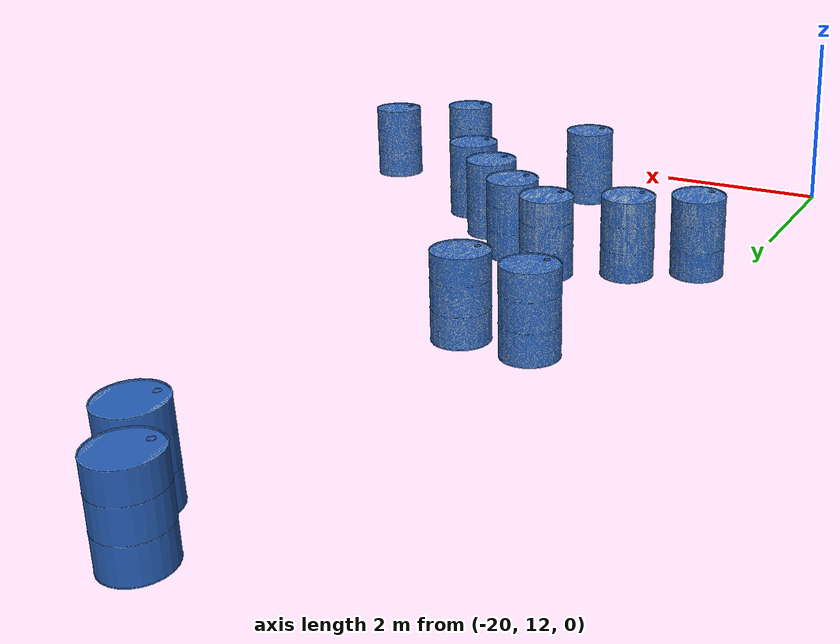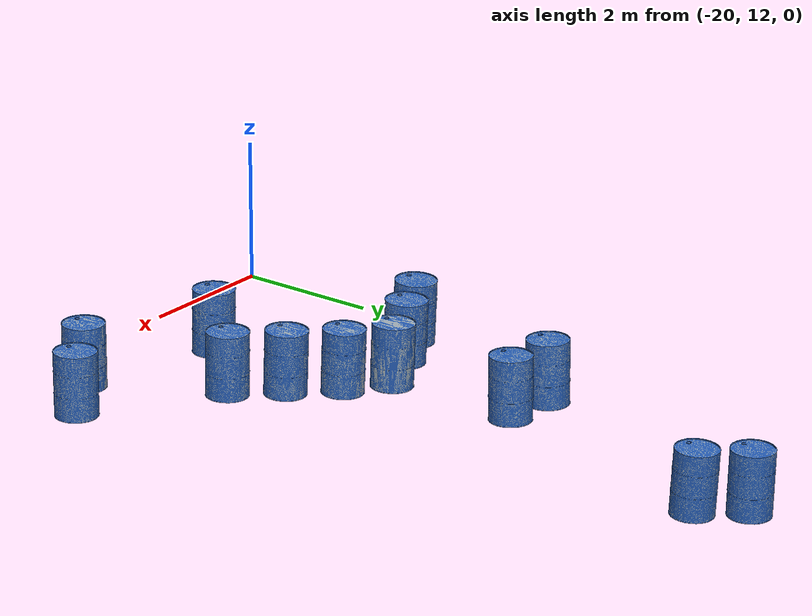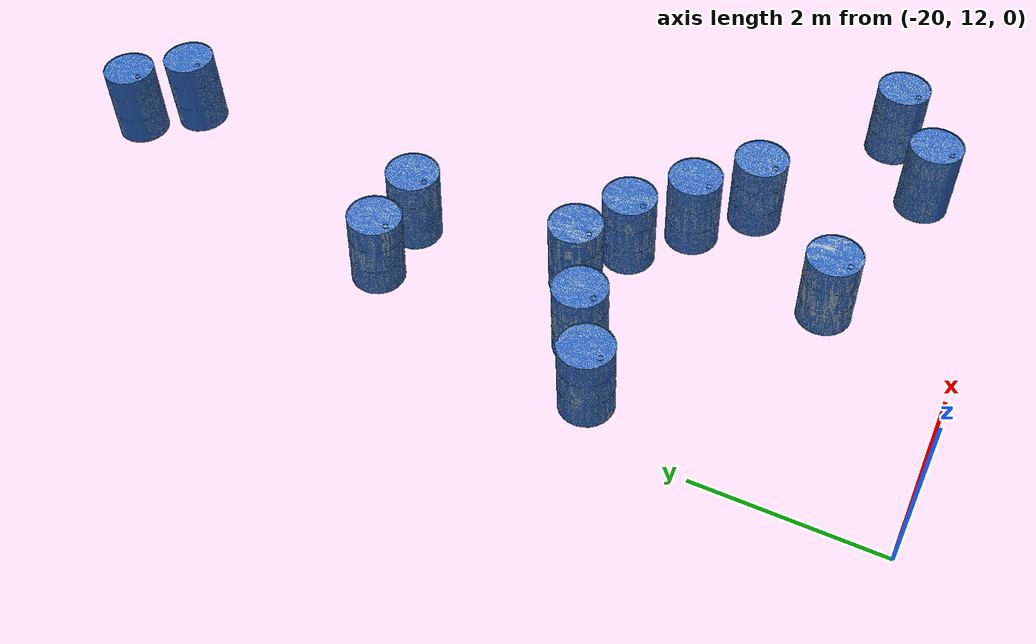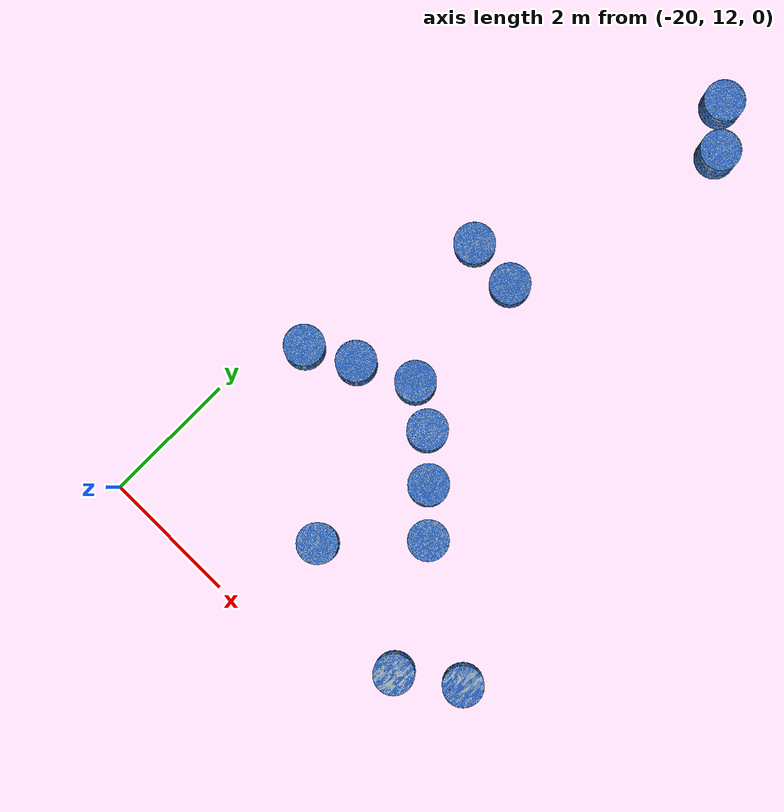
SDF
<sdf version="1.6">
 <world name="default">
  <model name="barrel_74">
   <link name="link">
    <inertial>
     <mass>500</mass>
     <inertia><ixx>51.2096</ixx><iyy>51.2096</iyy><izz>25</izz><ixy>0</ixy><ixz>0</ixz><iyz>0</iyz></inertia>
    </inertial>
    <collision name="collision">
     <geometry><mesh><uri>model://barrel/meshes/barrel.dae</uri><scale>1 1 1</scale></mesh></geometry>
    </collision>
    <visual name="visual">
     <geometry><mesh><uri>model://barrel/meshes/barrel.dae</uri><scale>1 1 1</scale></mesh></geometry>
    </visual>
   </link>
   <pose>-14.9016 13.2093 0.068327 -0.000639 -0.002185 -0.001315</pose>
  </model>
  <model name="barrel_75">
   <link name="link">
    <inertial>
     <mass>500</mass>
     <inertia><ixx>51.2096</ixx><iyy>51.2096</iyy><izz>25</izz><ixy>0</ixy><ixz>0</ixz><iyz>0</iyz></inertia>
    </inertial>
    <collision name="collision">
     <geometry><mesh><uri>model://barrel/meshes/barrel.dae</uri><scale>1 1 1</scale></mesh></geometry>
    </collision>
    <visual name="visual">
     <geometry><mesh><uri>model://barrel/meshes/barrel.dae</uri><scale>1 1 1</scale></mesh></geometry>
    </visual>
   </link>
   <pose>-15.6987 12.6435 0.0653 0.003623 -0.005555 -0</pose>
  </model>
  <model name="barrel_78">
   <link name="link">
    <inertial>
     <mass>500</mass>
     <inertia><ixx>51.2096</ixx><iyy>51.2096</iyy><izz>25</izz><ixy>0</ixy><ixz>0</ixz><iyz>0</iyz></inertia>
    </inertial>
    <collision name="collision">
     <geometry><mesh><uri>model://barrel/meshes/barrel.dae</uri><scale>1 1 1</scale></mesh></geometry>
    </collision>
    <visual name="visual">
     <geometry><mesh><uri>model://barrel/meshes/barrel.dae</uri><scale>1 1 1</scale></mesh></geometry>
    </visual>
   </link>
   <pose>-17.7373 13.1512 0.047634 -0.014364 -0.012023 0.000298</pose>
  </model>
  <model name="barrel_79">
   <link name="link">
    <inertial>
     <mass>500</mass>
     <inertia><ixx>51.2096</ixx><iyy>51.2096</iyy><izz>25</izz><ixy>0</ixy><ixz>0</ixz><iyz>0</iyz></inertia>
    </inertial>
    <collision name="collision">
     <geometry><mesh><uri>model://barrel/meshes/barrel.dae</uri><scale>1 1 1</scale></mesh></geometry>
    </collision>
    <visual name="visual">
     <geometry><mesh><uri>model://barrel/meshes/barrel.dae</uri><scale>1 1 1</scale></mesh></geometry>
    </visual>
   </link>
   <pose>-16.6747 14.2808 0.04419 -0.014365 -0.012025 0.00024</pose>
  </model>
  <model name="barrel_80">
   <link name="link">
    <inertial>
     <mass>500</mass>
     <inertia><ixx>51.2096</ixx><iyy>51.2096</iyy><izz>25</izz><ixy>0</ixy><ixz>0</ixz><iyz>0</iyz></inertia>
    </inertial>
    <collision name="collision">
     <geometry><mesh><uri>model://barrel/meshes/barrel.dae</uri><scale>1 1 1</scale></mesh></geometry>
    </collision>
    <visual name="visual">
     <geometry><mesh><uri>model://barrel/meshes/barrel.dae</uri><scale>1 1 1</scale></mesh></geometry>
    </visual>
   </link>
   <pose>-17.2208 14.8208 0.025108 -0.02812 -0.017312 -6e-05</pose>
  </model>
  <model name="barrel_81">
   <link name="link">
    <inertial>
     <mass>500</mass>
     <inertia><ixx>51.2096</ixx><iyy>51.2096</iyy><izz>25</izz><ixy>0</ixy><ixz>0</ixz><iyz>0</iyz></inertia>
    </inertial>
    <collision name="collision">
     <geometry><mesh><uri>model://barrel/meshes/barrel.dae</uri><scale>1 1 1</scale></mesh></geometry>
    </collision>
    <visual name="visual">
     <geometry><mesh><uri>model://barrel/meshes/barrel.dae</uri><scale>1 1 1</scale></mesh></geometry>
    </visual>
   </link>
   <pose>-17.7747 15.3489 0.000662 -0.028117 -0.017318 -0.000288</pose>
  </model>
  <model name="barrel_82">
   <link name="link">
    <inertial>
     <mass>500</mass>
     <inertia><ixx>51.2096</ixx><iyy>51.2096</iyy><izz>25</izz><ixy>0</ixy><ixz>0</ixz><iyz>0</iyz></inertia>
    </inertial>
    <collision name="collision">
     <geometry><mesh><uri>model://barrel/meshes/barrel.dae</uri><scale>1 1 1</scale></mesh></geometry>
    </collision>
    <visual name="visual">
     <geometry><mesh><uri>model://barrel/meshes/barrel.dae</uri><scale>1 1 1</scale></mesh></geometry>
    </visual>
   </link>
   <pose>-18.3713 15.7093 -0.02032 -0.024434 -0.020156 0.000278</pose>
  </model>
  <model name="barrel_83">
   <link name="link">
    <inertial>
     <mass>500</mass>
     <inertia><ixx>51.2096</ixx><iyy>51.2096</iyy><izz>25</izz><ixy>0</ixy><ixz>0</ixz><iyz>0</iyz></inertia>
    </inertial>
    <collision name="collision">
     <geometry><mesh><uri>model://barrel/meshes/barrel.dae</uri><scale>1 1 1</scale></mesh></geometry>
    </collision>
    <visual name="visual">
     <geometry><mesh><uri>model://barrel/meshes/barrel.dae</uri><scale>1 1 1</scale></mesh></geometry>
    </visual>
   </link>
   <pose>-19.1566 15.3137 -0.027158 -0.029577 -0.021818 -0.00406</pose>
  </model>
  <model name="barrel_84">
   <link name="link">
    <inertial>
     <mass>500</mass>
     <inertia><ixx>51.2096</ixx><iyy>51.2096</iyy><izz>25</izz><ixy>0</ixy><ixz>0</ixz><iyz>0</iyz></inertia>
    </inertial>
    <collision name="collision">
     <geometry><mesh><uri>model://barrel/meshes/barrel.dae</uri><scale>1 1 1</scale></mesh></geometry>
    </collision>
    <visual name="visual">
     <geometry><mesh><uri>model://barrel/meshes/barrel.dae</uri><scale>1 1 1</scale></mesh></geometry>
    </visual>
   </link>
   <pose>-19.8319 14.9479 -0.027918 -0.037609 -0.014484 -0.000117</pose>
  </model>
  <model name="barrel_85">
   <link name="link">
    <inertial>
     <mass>500</mass>
     <inertia><ixx>51.2096</ixx><iyy>51.2096</iyy><izz>25</izz><ixy>0</ixy><ixz>0</ixz><iyz>0</iyz></inertia>
    </inertial>
    <collision name="collision">
     <geometry><mesh><uri>model://barrel/meshes/barrel.dae</uri><scale>1 1 1</scale></mesh></geometry>
    </collision>
    <visual name="visual">
     <geometry><mesh><uri>model://barrel/meshes/barrel.dae</uri><scale>1 1 1</scale></mesh></geometry>
    </visual>
   </link>
   <pose>-18.4182 17.6368 -0.030474 0.007812 -0.009302 -6.4e-05</pose>
  </model>
  <model name="barrel_86">
   <link name="link">
    <inertial>
     <mass>500</mass>
     <inertia><ixx>51.2096</ixx><iyy>51.2096</iyy><izz>25</izz><ixy>0</ixy><ixz>0</ixz><iyz>0</iyz></inertia>
    </inertial>
    <collision name="collision">
     <geometry><mesh><uri>model://barrel/meshes/barrel.dae</uri><scale>1 1 1</scale></mesh></geometry>
    </collision>
    <visual name="visual">
     <geometry><mesh><uri>model://barrel/meshes/barrel.dae</uri><scale>1 1 1</scale></mesh></geometry>
    </visual>
   </link>
   <pose>-19.1779 17.6896 -0.033933 0.014645 -0.001629 -0.000743</pose>
  </model>
  <model name="barrel_87">
   <link name="link">
    <inertial>
     <mass>500</mass>
     <inertia><ixx>51.2096</ixx><iyy>51.2096</iyy><izz>25</izz><ixy>0</ixy><ixz>0</ixz><iyz>0</iyz></inertia>
    </inertial>
    <collision name="collision">
     <geometry><mesh><uri>model://barrel/meshes/barrel.dae</uri><scale>1 1 1</scale></mesh></geometry>
    </collision>
    <visual name="visual">
     <geometry><mesh><uri>model://barrel/meshes/barrel.dae</uri><scale>1 1 1</scale></mesh></geometry>
    </visual>
   </link>
   <pose>-17.6627 21.0097 -0.167762 -0.05318 -0.015549 0.011426</pose>
  </model>
  <model name="barrel_88">
   <link name="link">
    <inertial>
     <mass>500</mass>
     <inertia><ixx>51.2096</ixx><iyy>51.2096</iyy><izz>25</izz><ixy>0</ixy><ixz>0</ixz><iyz>0</iyz></inertia>
    </inertial>
    <collision name="collision">
     <geometry><mesh><uri>model://barrel/meshes/barrel.dae</uri><scale>1 1 1</scale></mesh></geometry>
    </collision>
    <visual name="visual">
     <geometry><mesh><uri>model://barrel/meshes/barrel.dae</uri><scale>1 1 1</scale></mesh></geometry>
    </visual>
   </link>
   <pose>-18.108 21.5501 -0.196031 -0.030178 -0.009709 0.055877</pose>
  </model>
 </world>
</sdf>
